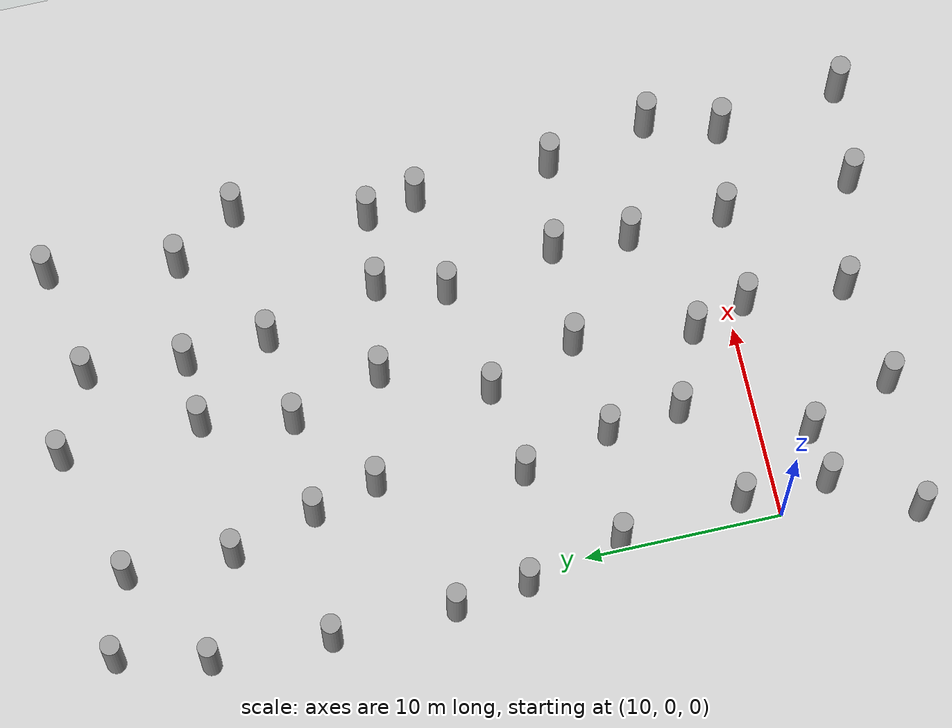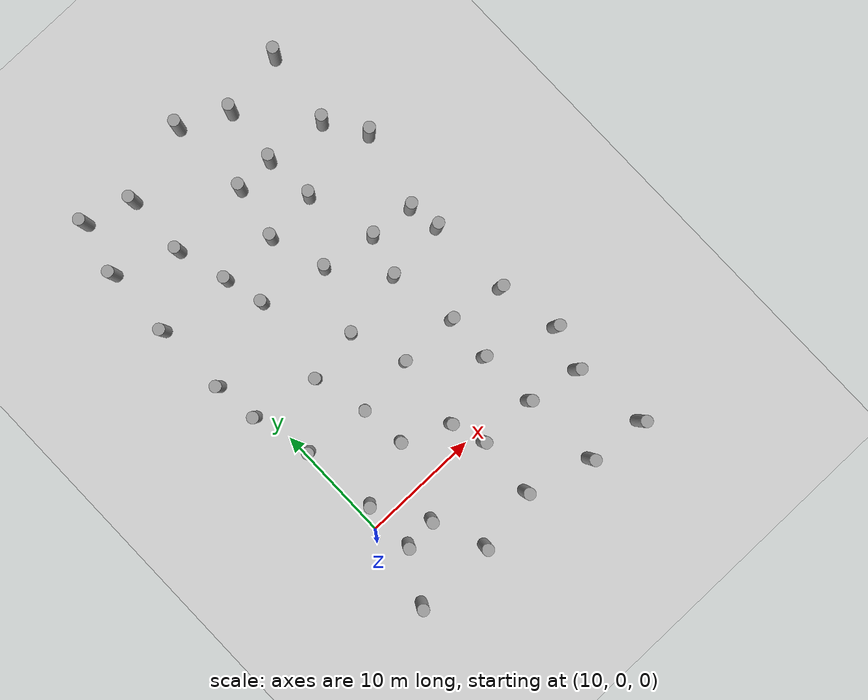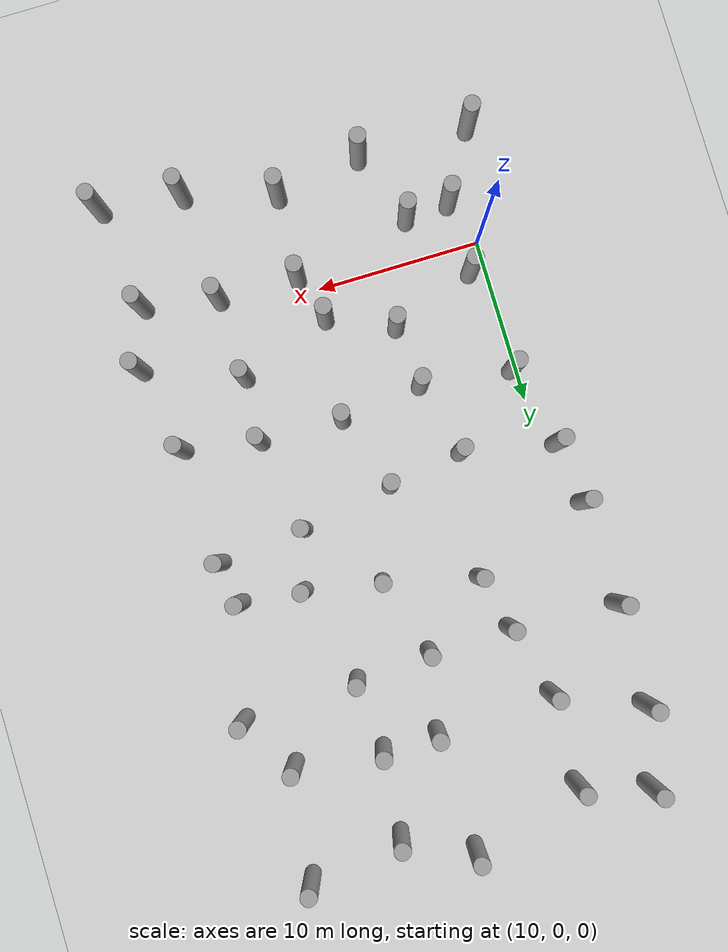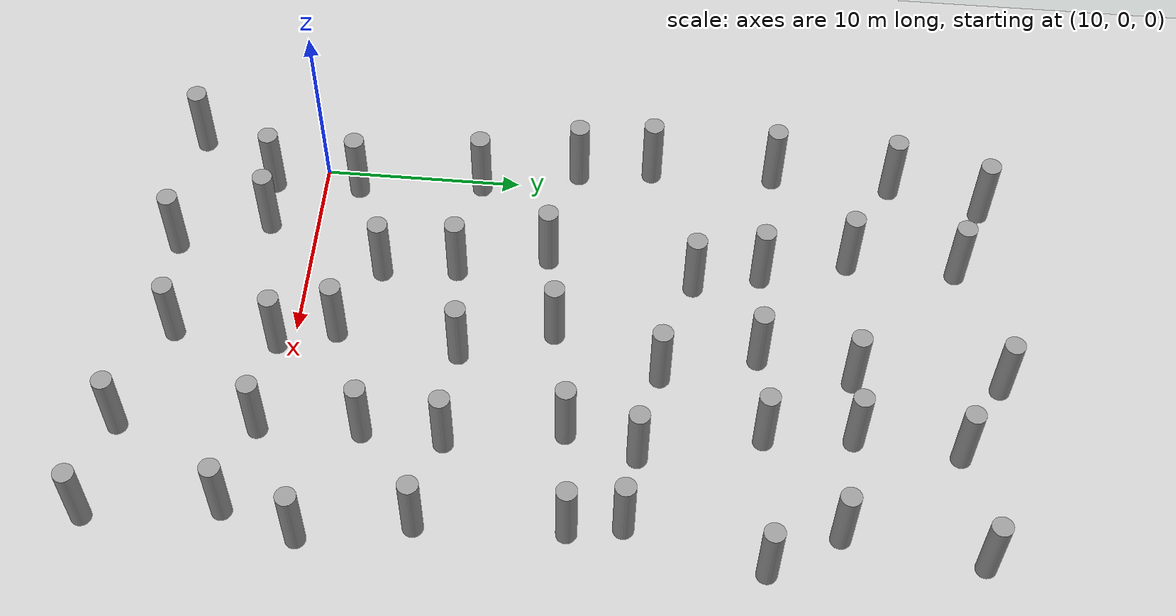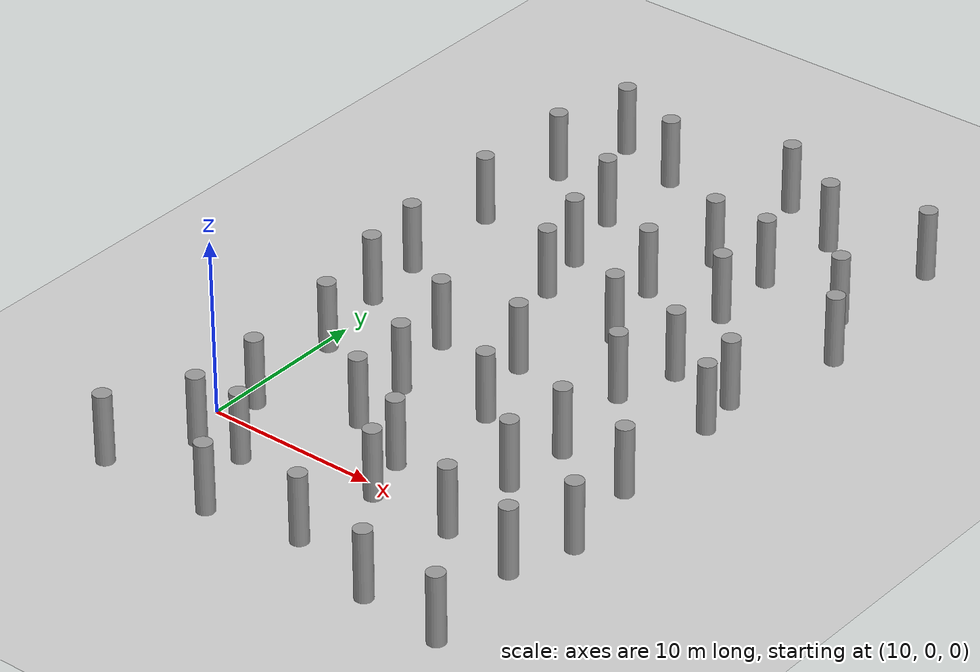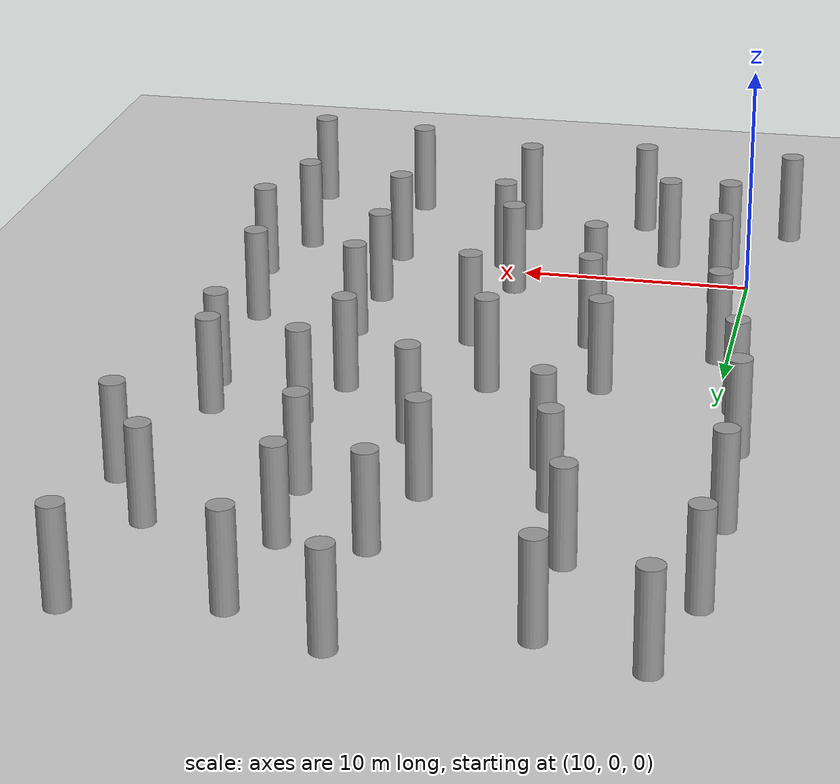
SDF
<sdf version="1.5">
 <world name="circle">
  <model name="ground">
   <static>1</static>
   <link name="link">
    <collision name="collision">
     <geometry><plane><normal>0 0 1</normal><size>100 100</size></plane></geometry>
     <surface><friction><ode><mu>100</mu><mu2>50</mu2></ode></friction></surface>
    </collision>
    <visual name="visual">
     <cast_shadows>0</cast_shadows>
     <geometry><plane><normal>0 0 1</normal><size>100 100</size></plane></geometry>
     <material>
      <script><uri>file://media/materials/scripts/gazebo.material</uri><name>Gazebo/Grey</name></script>
     </material>
    </visual>
    <velocity_decay><linear>0</linear><angular>0</angular></velocity_decay>
   </link>
  </model>
  <model name="unit_cylinder_6">
   <pose>8.65560884006 -6.71842204204 2 3e-06 4e-06 -0</pose>
   <static>1</static>
   <self_collide>1</self_collide>
   <link name="link">
    <inertial>
     <mass>1</mass>
     <inertia><ixx>0.145833</ixx><ixy>0</ixy><ixz>0</ixz><iyy>0.145833</iyy><iyz>0</iyz><izz>0.125</izz></inertia>
    </inertial>
    <collision name="collision">
     <geometry><cylinder><radius>0.5</radius><length>4</length></cylinder></geometry>
    </collision>
    <visual name="visual">
     <geometry><cylinder><radius>0.5</radius><length>4</length></cylinder></geometry>
     <material>
      <script><name>Gazebo/Grey</name><uri>file://media/materials/scripts/gazebo.material</uri></script>
     </material>
    </visual>
    <collision name="cyl_collision">
     <geometry><cylinder><radius>0.5</radius><length>4</length></cylinder></geometry>
    </collision>
    <sensor name="my_contact" type="contact">
     <contact><collision>cyl_collision</collision></contact>
     <update_rate>5</update_rate>
    </sensor>
   </link>
  </model>
  <model name="unit_cylinder_7">
   <pose>11.0925974259 -2.59262243464 2 3e-06 4e-06 -0</pose>
   <static>1</static>
   <self_collide>1</self_collide>
   <link name="link">
    <inertial>
     <mass>1</mass>
     <inertia><ixx>0.145833</ixx><ixy>0</ixy><ixz>0</ixz><iyy>0.145833</iyy><iyz>0</iyz><izz>0.125</izz></inertia>
    </inertial>
    <collision name="collision">
     <geometry><cylinder><radius>0.5</radius><length>4</length></cylinder></geometry>
    </collision>
    <visual name="visual">
     <geometry><cylinder><radius>0.5</radius><length>4</length></cylinder></geometry>
     <material>
      <script><name>Gazebo/Grey</name><uri>file://media/materials/scripts/gazebo.material</uri></script>
     </material>
    </visual>
    <collision name="cyl_collision">
     <geometry><cylinder><radius>0.5</radius><length>4</length></cylinder></geometry>
    </collision>
    <sensor name="my_contact" type="contact">
     <contact><collision>cyl_collision</collision></contact>
     <update_rate>5</update_rate>
    </sensor>
   </link>
  </model>
  <model name="unit_cylinder_8">
   <pose>11.0563673491 1.79596865884 2 3e-06 4e-06 -0</pose>
   <static>1</static>
   <self_collide>1</self_collide>
   <link name="link">
    <inertial>
     <mass>1</mass>
     <inertia><ixx>0.145833</ixx><ixy>0</ixy><ixz>0</ixz><iyy>0.145833</iyy><iyz>0</iyz><izz>0.125</izz></inertia>
    </inertial>
    <collision name="collision">
     <geometry><cylinder><radius>0.5</radius><length>4</length></cylinder></geometry>
    </collision>
    <visual name="visual">
     <geometry><cylinder><radius>0.5</radius><length>4</length></cylinder></geometry>
     <material>
      <script><name>Gazebo/Grey</name><uri>file://media/materials/scripts/gazebo.material</uri></script>
     </material>
    </visual>
    <collision name="cyl_collision">
     <geometry><cylinder><radius>0.5</radius><length>4</length></cylinder></geometry>
    </collision>
    <sensor name="my_contact" type="contact">
     <contact><collision>cyl_collision</collision></contact>
     <update_rate>5</update_rate>
    </sensor>
   </link>
  </model>
  <model name="unit_cylinder_9">
   <pose>10.4059899599 8.12202831886 2 3e-06 4e-06 -0</pose>
   <static>1</static>
   <self_collide>1</self_collide>
   <link name="link">
    <inertial>
     <mass>1</mass>
     <inertia><ixx>0.145833</ixx><ixy>0</ixy><ixz>0</ixz><iyy>0.145833</iyy><iyz>0</iyz><izz>0.125</izz></inertia>
    </inertial>
    <collision name="collision">
     <geometry><cylinder><radius>0.5</radius><length>4</length></cylinder></geometry>
    </collision>
    <visual name="visual">
     <geometry><cylinder><radius>0.5</radius><length>4</length></cylinder></geometry>
     <material>
      <script><name>Gazebo/Grey</name><uri>file://media/materials/scripts/gazebo.material</uri></script>
     </material>
    </visual>
    <collision name="cyl_collision">
     <geometry><cylinder><radius>0.5</radius><length>4</length></cylinder></geometry>
    </collision>
    <sensor name="my_contact" type="contact">
     <contact><collision>cyl_collision</collision></contact>
     <update_rate>5</update_rate>
    </sensor>
   </link>
  </model>
  <model name="unit_cylinder_10">
   <pose>9.20407594885 13.0749428126 2 3e-06 4e-06 -0</pose>
   <static>1</static>
   <self_collide>1</self_collide>
   <link name="link">
    <inertial>
     <mass>1</mass>
     <inertia><ixx>0.145833</ixx><ixy>0</ixy><ixz>0</ixz><iyy>0.145833</iyy><iyz>0</iyz><izz>0.125</izz></inertia>
    </inertial>
    <collision name="collision">
     <geometry><cylinder><radius>0.5</radius><length>4</length></cylinder></geometry>
    </collision>
    <visual name="visual">
     <geometry><cylinder><radius>0.5</radius><length>4</length></cylinder></geometry>
     <material>
      <script><name>Gazebo/Grey</name><uri>file://media/materials/scripts/gazebo.material</uri></script>
     </material>
    </visual>
    <collision name="cyl_collision">
     <geometry><cylinder><radius>0.5</radius><length>4</length></cylinder></geometry>
    </collision>
    <sensor name="my_contact" type="contact">
     <contact><collision>cyl_collision</collision></contact>
     <update_rate>5</update_rate>
    </sensor>
   </link>
  </model>
  <model name="unit_cylinder_11">
   <pose>8.75446936457 16.8259148366 2 3e-06 4e-06 -0</pose>
   <static>1</static>
   <self_collide>1</self_collide>
   <link name="link">
    <inertial>
     <mass>1</mass>
     <inertia><ixx>0.145833</ixx><ixy>0</ixy><ixz>0</ixz><iyy>0.145833</iyy><iyz>0</iyz><izz>0.125</izz></inertia>
    </inertial>
    <collision name="collision">
     <geometry><cylinder><radius>0.5</radius><length>4</length></cylinder></geometry>
    </collision>
    <visual name="visual">
     <geometry><cylinder><radius>0.5</radius><length>4</length></cylinder></geometry>
     <material>
      <script><name>Gazebo/Grey</name><uri>file://media/materials/scripts/gazebo.material</uri></script>
     </material>
    </visual>
    <collision name="cyl_collision">
     <geometry><cylinder><radius>0.5</radius><length>4</length></cylinder></geometry>
    </collision>
    <sensor name="my_contact" type="contact">
     <contact><collision>cyl_collision</collision></contact>
     <update_rate>5</update_rate>
    </sensor>
   </link>
  </model>
  <model name="unit_cylinder_12">
   <pose>8.59839209359 23.0891876215 2 3e-06 4e-06 -0</pose>
   <static>1</static>
   <self_collide>1</self_collide>
   <link name="link">
    <inertial>
     <mass>1</mass>
     <inertia><ixx>0.145833</ixx><ixy>0</ixy><ixz>0</ixz><iyy>0.145833</iyy><iyz>0</iyz><izz>0.125</izz></inertia>
    </inertial>
    <collision name="collision">
     <geometry><cylinder><radius>0.5</radius><length>4</length></cylinder></geometry>
    </collision>
    <visual name="visual">
     <geometry><cylinder><radius>0.5</radius><length>4</length></cylinder></geometry>
     <material>
      <script><name>Gazebo/Grey</name><uri>file://media/materials/scripts/gazebo.material</uri></script>
     </material>
    </visual>
    <collision name="cyl_collision">
     <geometry><cylinder><radius>0.5</radius><length>4</length></cylinder></geometry>
    </collision>
    <sensor name="my_contact" type="contact">
     <contact><collision>cyl_collision</collision></contact>
     <update_rate>5</update_rate>
    </sensor>
   </link>
  </model>
  <model name="unit_cylinder_13">
   <pose>8.77301460406 29.1386734522 2 3e-06 4e-06 -0</pose>
   <static>1</static>
   <self_collide>1</self_collide>
   <link name="link">
    <inertial>
     <mass>1</mass>
     <inertia><ixx>0.145833</ixx><ixy>0</ixy><ixz>0</ixz><iyy>0.145833</iyy><iyz>0</iyz><izz>0.125</izz></inertia>
    </inertial>
    <collision name="collision">
     <geometry><cylinder><radius>0.5</radius><length>4</length></cylinder></geometry>
    </collision>
    <visual name="visual">
     <geometry><cylinder><radius>0.5</radius><length>4</length></cylinder></geometry>
     <material>
      <script><name>Gazebo/Grey</name><uri>file://media/materials/scripts/gazebo.material</uri></script>
     </material>
    </visual>
    <collision name="cyl_collision">
     <geometry><cylinder><radius>0.5</radius><length>4</length></cylinder></geometry>
    </collision>
    <sensor name="my_contact" type="contact">
     <contact><collision>cyl_collision</collision></contact>
     <update_rate>5</update_rate>
    </sensor>
   </link>
  </model>
  <model name="unit_cylinder_14">
   <pose>9.91188079629 33.702368652 2 3e-06 4e-06 -0</pose>
   <static>1</static>
   <self_collide>1</self_collide>
   <link name="link">
    <inertial>
     <mass>1</mass>
     <inertia><ixx>0.145833</ixx><ixy>0</ixy><ixz>0</ixz><iyy>0.145833</iyy><iyz>0</iyz><izz>0.125</izz></inertia>
    </inertial>
    <collision name="collision">
     <geometry><cylinder><radius>0.5</radius><length>4</length></cylinder></geometry>
    </collision>
    <visual name="visual">
     <geometry><cylinder><radius>0.5</radius><length>4</length></cylinder></geometry>
     <material>
      <script><name>Gazebo/Grey</name><uri>file://media/materials/scripts/gazebo.material</uri></script>
     </material>
    </visual>
    <collision name="cyl_collision">
     <geometry><cylinder><radius>0.5</radius><length>4</length></cylinder></geometry>
    </collision>
    <sensor name="my_contact" type="contact">
     <contact><collision>cyl_collision</collision></contact>
     <update_rate>5</update_rate>
    </sensor>
   </link>
  </model>
  <model name="unit_cylinder_21">
   <pose>15.4473837249 -6.83084311532 2 3e-06 4e-06 -0</pose>
   <static>1</static>
   <self_collide>1</self_collide>
   <link name="link">
    <inertial>
     <mass>1</mass>
     <inertia><ixx>0.145833</ixx><ixy>0</ixy><ixz>0</ixz><iyy>0.145833</iyy><iyz>0</iyz><izz>0.125</izz></inertia>
    </inertial>
    <collision name="collision">
     <geometry><cylinder><radius>0.5</radius><length>4</length></cylinder></geometry>
    </collision>
    <visual name="visual">
     <geometry><cylinder><radius>0.5</radius><length>4</length></cylinder></geometry>
     <material>
      <script><name>Gazebo/Grey</name><uri>file://media/materials/scripts/gazebo.material</uri></script>
     </material>
    </visual>
    <collision name="cyl_collision">
     <geometry><cylinder><radius>0.5</radius><length>4</length></cylinder></geometry>
    </collision>
    <sensor name="my_contact" type="contact">
     <contact><collision>cyl_collision</collision></contact>
     <update_rate>5</update_rate>
    </sensor>
   </link>
  </model>
  <model name="unit_cylinder_22">
   <pose>13.7809937066 -2.39120445731 2 3e-06 4e-06 -0</pose>
   <static>1</static>
   <self_collide>1</self_collide>
   <link name="link">
    <inertial>
     <mass>1</mass>
     <inertia><ixx>0.145833</ixx><ixy>0</ixy><ixz>0</ixz><iyy>0.145833</iyy><iyz>0</iyz><izz>0.125</izz></inertia>
    </inertial>
    <collision name="collision">
     <geometry><cylinder><radius>0.5</radius><length>4</length></cylinder></geometry>
    </collision>
    <visual name="visual">
     <geometry><cylinder><radius>0.5</radius><length>4</length></cylinder></geometry>
     <material>
      <script><name>Gazebo/Grey</name><uri>file://media/materials/scripts/gazebo.material</uri></script>
     </material>
    </visual>
    <collision name="cyl_collision">
     <geometry><cylinder><radius>0.5</radius><length>4</length></cylinder></geometry>
    </collision>
    <sensor name="my_contact" type="contact">
     <contact><collision>cyl_collision</collision></contact>
     <update_rate>5</update_rate>
    </sensor>
   </link>
  </model>
  <model name="unit_cylinder_23">
   <pose>16.2458317515 3.72797373236 2 3e-06 4e-06 -0</pose>
   <static>1</static>
   <self_collide>1</self_collide>
   <link name="link">
    <inertial>
     <mass>1</mass>
     <inertia><ixx>0.145833</ixx><ixy>0</ixy><ixz>0</ixz><iyy>0.145833</iyy><iyz>0</iyz><izz>0.125</izz></inertia>
    </inertial>
    <collision name="collision">
     <geometry><cylinder><radius>0.5</radius><length>4</length></cylinder></geometry>
    </collision>
    <visual name="visual">
     <geometry><cylinder><radius>0.5</radius><length>4</length></cylinder></geometry>
     <material>
      <script><name>Gazebo/Grey</name><uri>file://media/materials/scripts/gazebo.material</uri></script>
     </material>
    </visual>
    <collision name="cyl_collision">
     <geometry><cylinder><radius>0.5</radius><length>4</length></cylinder></geometry>
    </collision>
    <sensor name="my_contact" type="contact">
     <contact><collision>cyl_collision</collision></contact>
     <update_rate>5</update_rate>
    </sensor>
   </link>
  </model>
  <model name="unit_cylinder_24">
   <pose>15.9001981405 7.47352681353 2 3e-06 4e-06 -0</pose>
   <static>1</static>
   <self_collide>1</self_collide>
   <link name="link">
    <inertial>
     <mass>1</mass>
     <inertia><ixx>0.145833</ixx><ixy>0</ixy><ixz>0</ixz><iyy>0.145833</iyy><iyz>0</iyz><izz>0.125</izz></inertia>
    </inertial>
    <collision name="collision">
     <geometry><cylinder><radius>0.5</radius><length>4</length></cylinder></geometry>
    </collision>
    <visual name="visual">
     <geometry><cylinder><radius>0.5</radius><length>4</length></cylinder></geometry>
     <material>
      <script><name>Gazebo/Grey</name><uri>file://media/materials/scripts/gazebo.material</uri></script>
     </material>
    </visual>
    <collision name="cyl_collision">
     <geometry><cylinder><radius>0.5</radius><length>4</length></cylinder></geometry>
    </collision>
    <sensor name="my_contact" type="contact">
     <contact><collision>cyl_collision</collision></contact>
     <update_rate>5</update_rate>
    </sensor>
   </link>
  </model>
  <model name="unit_cylinder_25">
   <pose>14.7860581348 11.9799662513 2 3e-06 4e-06 -0</pose>
   <static>1</static>
   <self_collide>1</self_collide>
   <link name="link">
    <inertial>
     <mass>1</mass>
     <inertia><ixx>0.145833</ixx><ixy>0</ixy><ixz>0</ixz><iyy>0.145833</iyy><iyz>0</iyz><izz>0.125</izz></inertia>
    </inertial>
    <collision name="collision">
     <geometry><cylinder><radius>0.5</radius><length>4</length></cylinder></geometry>
    </collision>
    <visual name="visual">
     <geometry><cylinder><radius>0.5</radius><length>4</length></cylinder></geometry>
     <material>
      <script><name>Gazebo/Grey</name><uri>file://media/materials/scripts/gazebo.material</uri></script>
     </material>
    </visual>
    <collision name="cyl_collision">
     <geometry><cylinder><radius>0.5</radius><length>4</length></cylinder></geometry>
    </collision>
    <sensor name="my_contact" type="contact">
     <contact><collision>cyl_collision</collision></contact>
     <update_rate>5</update_rate>
    </sensor>
   </link>
  </model>
  <model name="unit_cylinder_26">
   <pose>15.863351309 19.3138317568 2 3e-06 4e-06 -0</pose>
   <static>1</static>
   <self_collide>1</self_collide>
   <link name="link">
    <inertial>
     <mass>1</mass>
     <inertia><ixx>0.145833</ixx><ixy>0</ixy><ixz>0</ixz><iyy>0.145833</iyy><iyz>0</iyz><izz>0.125</izz></inertia>
    </inertial>
    <collision name="collision">
     <geometry><cylinder><radius>0.5</radius><length>4</length></cylinder></geometry>
    </collision>
    <visual name="visual">
     <geometry><cylinder><radius>0.5</radius><length>4</length></cylinder></geometry>
     <material>
      <script><name>Gazebo/Grey</name><uri>file://media/materials/scripts/gazebo.material</uri></script>
     </material>
    </visual>
    <collision name="cyl_collision">
     <geometry><cylinder><radius>0.5</radius><length>4</length></cylinder></geometry>
    </collision>
    <sensor name="my_contact" type="contact">
     <contact><collision>cyl_collision</collision></contact>
     <update_rate>5</update_rate>
    </sensor>
   </link>
  </model>
  <model name="unit_cylinder_27">
   <pose>15.0321887663 22.6323488595 2 3e-06 4e-06 -0</pose>
   <static>1</static>
   <self_collide>1</self_collide>
   <link name="link">
    <inertial>
     <mass>1</mass>
     <inertia><ixx>0.145833</ixx><ixy>0</ixy><ixz>0</ixz><iyy>0.145833</iyy><iyz>0</iyz><izz>0.125</izz></inertia>
    </inertial>
    <collision name="collision">
     <geometry><cylinder><radius>0.5</radius><length>4</length></cylinder></geometry>
    </collision>
    <visual name="visual">
     <geometry><cylinder><radius>0.5</radius><length>4</length></cylinder></geometry>
     <material>
      <script><name>Gazebo/Grey</name><uri>file://media/materials/scripts/gazebo.material</uri></script>
     </material>
    </visual>
    <collision name="cyl_collision">
     <geometry><cylinder><radius>0.5</radius><length>4</length></cylinder></geometry>
    </collision>
    <sensor name="my_contact" type="contact">
     <contact><collision>cyl_collision</collision></contact>
     <update_rate>5</update_rate>
    </sensor>
   </link>
  </model>
  <model name="unit_cylinder_28">
   <pose>13.8386892422 26.9644168073 2 3e-06 4e-06 -0</pose>
   <static>1</static>
   <self_collide>1</self_collide>
   <link name="link">
    <inertial>
     <mass>1</mass>
     <inertia><ixx>0.145833</ixx><ixy>0</ixy><ixz>0</ixz><iyy>0.145833</iyy><iyz>0</iyz><izz>0.125</izz></inertia>
    </inertial>
    <collision name="collision">
     <geometry><cylinder><radius>0.5</radius><length>4</length></cylinder></geometry>
    </collision>
    <visual name="visual">
     <geometry><cylinder><radius>0.5</radius><length>4</length></cylinder></geometry>
     <material>
      <script><name>Gazebo/Grey</name><uri>file://media/materials/scripts/gazebo.material</uri></script>
     </material>
    </visual>
    <collision name="cyl_collision">
     <geometry><cylinder><radius>0.5</radius><length>4</length></cylinder></geometry>
    </collision>
    <sensor name="my_contact" type="contact">
     <contact><collision>cyl_collision</collision></contact>
     <update_rate>5</update_rate>
    </sensor>
   </link>
  </model>
  <model name="unit_cylinder_29">
   <pose>13.9463333479 32.3646051353 2 3e-06 4e-06 -0</pose>
   <static>1</static>
   <self_collide>1</self_collide>
   <link name="link">
    <inertial>
     <mass>1</mass>
     <inertia><ixx>0.145833</ixx><ixy>0</ixy><ixz>0</ixz><iyy>0.145833</iyy><iyz>0</iyz><izz>0.125</izz></inertia>
    </inertial>
    <collision name="collision">
     <geometry><cylinder><radius>0.5</radius><length>4</length></cylinder></geometry>
    </collision>
    <visual name="visual">
     <geometry><cylinder><radius>0.5</radius><length>4</length></cylinder></geometry>
     <material>
      <script><name>Gazebo/Grey</name><uri>file://media/materials/scripts/gazebo.material</uri></script>
     </material>
    </visual>
    <collision name="cyl_collision">
     <geometry><cylinder><radius>0.5</radius><length>4</length></cylinder></geometry>
    </collision>
    <sensor name="my_contact" type="contact">
     <contact><collision>cyl_collision</collision></contact>
     <update_rate>5</update_rate>
    </sensor>
   </link>
  </model>
  <model name="unit_cylinder_36">
   <pose>20.7448508858 -5.93720853215 2 3e-06 4e-06 -0</pose>
   <static>1</static>
   <self_collide>1</self_collide>
   <link name="link">
    <inertial>
     <mass>1</mass>
     <inertia><ixx>0.145833</ixx><ixy>0</ixy><ixz>0</ixz><iyy>0.145833</iyy><iyz>0</iyz><izz>0.125</izz></inertia>
    </inertial>
    <collision name="collision">
     <geometry><cylinder><radius>0.5</radius><length>4</length></cylinder></geometry>
    </collision>
    <visual name="visual">
     <geometry><cylinder><radius>0.5</radius><length>4</length></cylinder></geometry>
     <material>
      <script><name>Gazebo/Grey</name><uri>file://media/materials/scripts/gazebo.material</uri></script>
     </material>
    </visual>
    <collision name="cyl_collision">
     <geometry><cylinder><radius>0.5</radius><length>4</length></cylinder></geometry>
    </collision>
    <sensor name="my_contact" type="contact">
     <contact><collision>cyl_collision</collision></contact>
     <update_rate>5</update_rate>
    </sensor>
   </link>
  </model>
  <model name="unit_cylinder_37">
   <pose>21.0385434207 -0.788469635204 2 3e-06 4e-06 -0</pose>
   <static>1</static>
   <self_collide>1</self_collide>
   <link name="link">
    <inertial>
     <mass>1</mass>
     <inertia><ixx>0.145833</ixx><ixy>0</ixy><ixz>0</ixz><iyy>0.145833</iyy><iyz>0</iyz><izz>0.125</izz></inertia>
    </inertial>
    <collision name="collision">
     <geometry><cylinder><radius>0.5</radius><length>4</length></cylinder></geometry>
    </collision>
    <visual name="visual">
     <geometry><cylinder><radius>0.5</radius><length>4</length></cylinder></geometry>
     <material>
      <script><name>Gazebo/Grey</name><uri>file://media/materials/scripts/gazebo.material</uri></script>
     </material>
    </visual>
    <collision name="cyl_collision">
     <geometry><cylinder><radius>0.5</radius><length>4</length></cylinder></geometry>
    </collision>
    <sensor name="my_contact" type="contact">
     <contact><collision>cyl_collision</collision></contact>
     <update_rate>5</update_rate>
    </sensor>
   </link>
  </model>
  <model name="unit_cylinder_38">
   <pose>20.1316745931 2.02383003871 2 3e-06 4e-06 -0</pose>
   <static>1</static>
   <self_collide>1</self_collide>
   <link name="link">
    <inertial>
     <mass>1</mass>
     <inertia><ixx>0.145833</ixx><ixy>0</ixy><ixz>0</ixz><iyy>0.145833</iyy><iyz>0</iyz><izz>0.125</izz></inertia>
    </inertial>
    <collision name="collision">
     <geometry><cylinder><radius>0.5</radius><length>4</length></cylinder></geometry>
    </collision>
    <visual name="visual">
     <geometry><cylinder><radius>0.5</radius><length>4</length></cylinder></geometry>
     <material>
      <script><name>Gazebo/Grey</name><uri>file://media/materials/scripts/gazebo.material</uri></script>
     </material>
    </visual>
    <collision name="cyl_collision">
     <geometry><cylinder><radius>0.5</radius><length>4</length></cylinder></geometry>
    </collision>
    <sensor name="my_contact" type="contact">
     <contact><collision>cyl_collision</collision></contact>
     <update_rate>5</update_rate>
    </sensor>
   </link>
  </model>
  <model name="unit_cylinder_39">
   <pose>20.8875474315 8.10638016418 2 3e-06 4e-06 -0</pose>
   <static>1</static>
   <self_collide>1</self_collide>
   <link name="link">
    <inertial>
     <mass>1</mass>
     <inertia><ixx>0.145833</ixx><ixy>0</ixy><ixz>0</ixz><iyy>0.145833</iyy><iyz>0</iyz><izz>0.125</izz></inertia>
    </inertial>
    <collision name="collision">
     <geometry><cylinder><radius>0.5</radius><length>4</length></cylinder></geometry>
    </collision>
    <visual name="visual">
     <geometry><cylinder><radius>0.5</radius><length>4</length></cylinder></geometry>
     <material>
      <script><name>Gazebo/Grey</name><uri>file://media/materials/scripts/gazebo.material</uri></script>
     </material>
    </visual>
    <collision name="cyl_collision">
     <geometry><cylinder><radius>0.5</radius><length>4</length></cylinder></geometry>
    </collision>
    <sensor name="my_contact" type="contact">
     <contact><collision>cyl_collision</collision></contact>
     <update_rate>5</update_rate>
    </sensor>
   </link>
  </model>
  <model name="unit_cylinder_40">
   <pose>19.3097542014 12.6751259291 2 3e-06 4e-06 -0</pose>
   <static>1</static>
   <self_collide>1</self_collide>
   <link name="link">
    <inertial>
     <mass>1</mass>
     <inertia><ixx>0.145833</ixx><ixy>0</ixy><ixz>0</ixz><iyy>0.145833</iyy><iyz>0</iyz><izz>0.125</izz></inertia>
    </inertial>
    <collision name="collision">
     <geometry><cylinder><radius>0.5</radius><length>4</length></cylinder></geometry>
    </collision>
    <visual name="visual">
     <geometry><cylinder><radius>0.5</radius><length>4</length></cylinder></geometry>
     <material>
      <script><name>Gazebo/Grey</name><uri>file://media/materials/scripts/gazebo.material</uri></script>
     </material>
    </visual>
    <collision name="cyl_collision">
     <geometry><cylinder><radius>0.5</radius><length>4</length></cylinder></geometry>
    </collision>
    <sensor name="my_contact" type="contact">
     <contact><collision>cyl_collision</collision></contact>
     <update_rate>5</update_rate>
    </sensor>
   </link>
  </model>
  <model name="unit_cylinder_41">
   <pose>21.37523828 17.9522517862 2 3e-06 4e-06 -0</pose>
   <static>1</static>
   <self_collide>1</self_collide>
   <link name="link">
    <inertial>
     <mass>1</mass>
     <inertia><ixx>0.145833</ixx><ixy>0</ixy><ixz>0</ixz><iyy>0.145833</iyy><iyz>0</iyz><izz>0.125</izz></inertia>
    </inertial>
    <collision name="collision">
     <geometry><cylinder><radius>0.5</radius><length>4</length></cylinder></geometry>
    </collision>
    <visual name="visual">
     <geometry><cylinder><radius>0.5</radius><length>4</length></cylinder></geometry>
     <material>
      <script><name>Gazebo/Grey</name><uri>file://media/materials/scripts/gazebo.material</uri></script>
     </material>
    </visual>
    <collision name="cyl_collision">
     <geometry><cylinder><radius>0.5</radius><length>4</length></cylinder></geometry>
    </collision>
    <sensor name="my_contact" type="contact">
     <contact><collision>cyl_collision</collision></contact>
     <update_rate>5</update_rate>
    </sensor>
   </link>
  </model>
  <model name="unit_cylinder_42">
   <pose>19.9421912974 22.6266981408 2 3e-06 4e-06 -0</pose>
   <static>1</static>
   <self_collide>1</self_collide>
   <link name="link">
    <inertial>
     <mass>1</mass>
     <inertia><ixx>0.145833</ixx><ixy>0</ixy><ixz>0</ixz><iyy>0.145833</iyy><iyz>0</iyz><izz>0.125</izz></inertia>
    </inertial>
    <collision name="collision">
     <geometry><cylinder><radius>0.5</radius><length>4</length></cylinder></geometry>
    </collision>
    <visual name="visual">
     <geometry><cylinder><radius>0.5</radius><length>4</length></cylinder></geometry>
     <material>
      <script><name>Gazebo/Grey</name><uri>file://media/materials/scripts/gazebo.material</uri></script>
     </material>
    </visual>
    <collision name="cyl_collision">
     <geometry><cylinder><radius>0.5</radius><length>4</length></cylinder></geometry>
    </collision>
    <sensor name="my_contact" type="contact">
     <contact><collision>cyl_collision</collision></contact>
     <update_rate>5</update_rate>
    </sensor>
   </link>
  </model>
  <model name="unit_cylinder_43">
   <pose>20.8429871309 27.210454042 2 3e-06 4e-06 -0</pose>
   <static>1</static>
   <self_collide>1</self_collide>
   <link name="link">
    <inertial>
     <mass>1</mass>
     <inertia><ixx>0.145833</ixx><ixy>0</ixy><ixz>0</ixz><iyy>0.145833</iyy><iyz>0</iyz><izz>0.125</izz></inertia>
    </inertial>
    <collision name="collision">
     <geometry><cylinder><radius>0.5</radius><length>4</length></cylinder></geometry>
    </collision>
    <visual name="visual">
     <geometry><cylinder><radius>0.5</radius><length>4</length></cylinder></geometry>
     <material>
      <script><name>Gazebo/Grey</name><uri>file://media/materials/scripts/gazebo.material</uri></script>
     </material>
    </visual>
    <collision name="cyl_collision">
     <geometry><cylinder><radius>0.5</radius><length>4</length></cylinder></geometry>
    </collision>
    <sensor name="my_contact" type="contact">
     <contact><collision>cyl_collision</collision></contact>
     <update_rate>5</update_rate>
    </sensor>
   </link>
  </model>
  <model name="unit_cylinder_44">
   <pose>20.6291243082 34.2940424882 2 3e-06 4e-06 -0</pose>
   <static>1</static>
   <self_collide>1</self_collide>
   <link name="link">
    <inertial>
     <mass>1</mass>
     <inertia><ixx>0.145833</ixx><ixy>0</ixy><ixz>0</ixz><iyy>0.145833</iyy><iyz>0</iyz><izz>0.125</izz></inertia>
    </inertial>
    <collision name="collision">
     <geometry><cylinder><radius>0.5</radius><length>4</length></cylinder></geometry>
    </collision>
    <visual name="visual">
     <geometry><cylinder><radius>0.5</radius><length>4</length></cylinder></geometry>
     <material>
      <script><name>Gazebo/Grey</name><uri>file://media/materials/scripts/gazebo.material</uri></script>
     </material>
    </visual>
    <collision name="cyl_collision">
     <geometry><cylinder><radius>0.5</radius><length>4</length></cylinder></geometry>
    </collision>
    <sensor name="my_contact" type="contact">
     <contact><collision>cyl_collision</collision></contact>
     <update_rate>5</update_rate>
    </sensor>
   </link>
  </model>
  <model name="unit_cylinder_51">
   <pose>26.2463321133 -7.57701077538 2 3e-06 4e-06 -0</pose>
   <static>1</static>
   <self_collide>1</self_collide>
   <link name="link">
    <inertial>
     <mass>1</mass>
     <inertia><ixx>0.145833</ixx><ixy>0</ixy><ixz>0</ixz><iyy>0.145833</iyy><iyz>0</iyz><izz>0.125</izz></inertia>
    </inertial>
    <collision name="collision">
     <geometry><cylinder><radius>0.5</radius><length>4</length></cylinder></geometry>
    </collision>
    <visual name="visual">
     <geometry><cylinder><radius>0.5</radius><length>4</length></cylinder></geometry>
     <material>
      <script><name>Gazebo/Grey</name><uri>file://media/materials/scripts/gazebo.material</uri></script>
     </material>
    </visual>
    <collision name="cyl_collision">
     <geometry><cylinder><radius>0.5</radius><length>4</length></cylinder></geometry>
    </collision>
    <sensor name="my_contact" type="contact">
     <contact><collision>cyl_collision</collision></contact>
     <update_rate>5</update_rate>
    </sensor>
   </link>
  </model>
  <model name="unit_cylinder_52">
   <pose>25.8863657276 -0.904166370469 2 3e-06 4e-06 -0</pose>
   <static>1</static>
   <self_collide>1</self_collide>
   <link name="link">
    <inertial>
     <mass>1</mass>
     <inertia><ixx>0.145833</ixx><ixy>0</ixy><ixz>0</ixz><iyy>0.145833</iyy><iyz>0</iyz><izz>0.125</izz></inertia>
    </inertial>
    <collision name="collision">
     <geometry><cylinder><radius>0.5</radius><length>4</length></cylinder></geometry>
    </collision>
    <visual name="visual">
     <geometry><cylinder><radius>0.5</radius><length>4</length></cylinder></geometry>
     <material>
      <script><name>Gazebo/Grey</name><uri>file://media/materials/scripts/gazebo.material</uri></script>
     </material>
    </visual>
    <collision name="cyl_collision">
     <geometry><cylinder><radius>0.5</radius><length>4</length></cylinder></geometry>
    </collision>
    <sensor name="my_contact" type="contact">
     <contact><collision>cyl_collision</collision></contact>
     <update_rate>5</update_rate>
    </sensor>
   </link>
  </model>
  <model name="unit_cylinder_53">
   <pose>25.6950825656 4.06011925962 2 3e-06 4e-06 -0</pose>
   <static>1</static>
   <self_collide>1</self_collide>
   <link name="link">
    <inertial>
     <mass>1</mass>
     <inertia><ixx>0.145833</ixx><ixy>0</ixy><ixz>0</ixz><iyy>0.145833</iyy><iyz>0</iyz><izz>0.125</izz></inertia>
    </inertial>
    <collision name="collision">
     <geometry><cylinder><radius>0.5</radius><length>4</length></cylinder></geometry>
    </collision>
    <visual name="visual">
     <geometry><cylinder><radius>0.5</radius><length>4</length></cylinder></geometry>
     <material>
      <script><name>Gazebo/Grey</name><uri>file://media/materials/scripts/gazebo.material</uri></script>
     </material>
    </visual>
    <collision name="cyl_collision">
     <geometry><cylinder><radius>0.5</radius><length>4</length></cylinder></geometry>
    </collision>
    <sensor name="my_contact" type="contact">
     <contact><collision>cyl_collision</collision></contact>
     <update_rate>5</update_rate>
    </sensor>
   </link>
  </model>
  <model name="unit_cylinder_54">
   <pose>25.8964534984 7.98098816818 2 3e-06 4e-06 -0</pose>
   <static>1</static>
   <self_collide>1</self_collide>
   <link name="link">
    <inertial>
     <mass>1</mass>
     <inertia><ixx>0.145833</ixx><ixy>0</ixy><ixz>0</ixz><iyy>0.145833</iyy><iyz>0</iyz><izz>0.125</izz></inertia>
    </inertial>
    <collision name="collision">
     <geometry><cylinder><radius>0.5</radius><length>4</length></cylinder></geometry>
    </collision>
    <visual name="visual">
     <geometry><cylinder><radius>0.5</radius><length>4</length></cylinder></geometry>
     <material>
      <script><name>Gazebo/Grey</name><uri>file://media/materials/scripts/gazebo.material</uri></script>
     </material>
    </visual>
    <collision name="cyl_collision">
     <geometry><cylinder><radius>0.5</radius><length>4</length></cylinder></geometry>
    </collision>
    <sensor name="my_contact" type="contact">
     <contact><collision>cyl_collision</collision></contact>
     <update_rate>5</update_rate>
    </sensor>
   </link>
  </model>
  <model name="unit_cylinder_55">
   <pose>24.9285981014 13.6842901332 2 3e-06 4e-06 -0</pose>
   <static>1</static>
   <self_collide>1</self_collide>
   <link name="link">
    <inertial>
     <mass>1</mass>
     <inertia><ixx>0.145833</ixx><ixy>0</ixy><ixz>0</ixz><iyy>0.145833</iyy><iyz>0</iyz><izz>0.125</izz></inertia>
    </inertial>
    <collision name="collision">
     <geometry><cylinder><radius>0.5</radius><length>4</length></cylinder></geometry>
    </collision>
    <visual name="visual">
     <geometry><cylinder><radius>0.5</radius><length>4</length></cylinder></geometry>
     <material>
      <script><name>Gazebo/Grey</name><uri>file://media/materials/scripts/gazebo.material</uri></script>
     </material>
    </visual>
    <collision name="cyl_collision">
     <geometry><cylinder><radius>0.5</radius><length>4</length></cylinder></geometry>
    </collision>
    <sensor name="my_contact" type="contact">
     <contact><collision>cyl_collision</collision></contact>
     <update_rate>5</update_rate>
    </sensor>
   </link>
  </model>
  <model name="unit_cylinder_56">
   <pose>25.9326293728 17.1416501381 2 3e-06 4e-06 -0</pose>
   <static>1</static>
   <self_collide>1</self_collide>
   <link name="link">
    <inertial>
     <mass>1</mass>
     <inertia><ixx>0.145833</ixx><ixy>0</ixy><ixz>0</ixz><iyy>0.145833</iyy><iyz>0</iyz><izz>0.125</izz></inertia>
    </inertial>
    <collision name="collision">
     <geometry><cylinder><radius>0.5</radius><length>4</length></cylinder></geometry>
    </collision>
    <visual name="visual">
     <geometry><cylinder><radius>0.5</radius><length>4</length></cylinder></geometry>
     <material>
      <script><name>Gazebo/Grey</name><uri>file://media/materials/scripts/gazebo.material</uri></script>
     </material>
    </visual>
    <collision name="cyl_collision">
     <geometry><cylinder><radius>0.5</radius><length>4</length></cylinder></geometry>
    </collision>
    <sensor name="my_contact" type="contact">
     <contact><collision>cyl_collision</collision></contact>
     <update_rate>5</update_rate>
    </sensor>
   </link>
  </model>
  <model name="unit_cylinder_57">
   <pose>24.4465514904 23.0130084233 2 3e-06 4e-06 -0</pose>
   <static>1</static>
   <self_collide>1</self_collide>
   <link name="link">
    <inertial>
     <mass>1</mass>
     <inertia><ixx>0.145833</ixx><ixy>0</ixy><ixz>0</ixz><iyy>0.145833</iyy><iyz>0</iyz><izz>0.125</izz></inertia>
    </inertial>
    <collision name="collision">
     <geometry><cylinder><radius>0.5</radius><length>4</length></cylinder></geometry>
    </collision>
    <visual name="visual">
     <geometry><cylinder><radius>0.5</radius><length>4</length></cylinder></geometry>
     <material>
      <script><name>Gazebo/Grey</name><uri>file://media/materials/scripts/gazebo.material</uri></script>
     </material>
    </visual>
    <collision name="cyl_collision">
     <geometry><cylinder><radius>0.5</radius><length>4</length></cylinder></geometry>
    </collision>
    <sensor name="my_contact" type="contact">
     <contact><collision>cyl_collision</collision></contact>
     <update_rate>5</update_rate>
    </sensor>
   </link>
  </model>
  <model name="unit_cylinder_58">
   <pose>24.1296929533 27.2715723586 2 3e-06 4e-06 -0</pose>
   <static>1</static>
   <self_collide>1</self_collide>
   <link name="link">
    <inertial>
     <mass>1</mass>
     <inertia><ixx>0.145833</ixx><ixy>0</ixy><ixz>0</ixz><iyy>0.145833</iyy><iyz>0</iyz><izz>0.125</izz></inertia>
    </inertial>
    <collision name="collision">
     <geometry><cylinder><radius>0.5</radius><length>4</length></cylinder></geometry>
    </collision>
    <visual name="visual">
     <geometry><cylinder><radius>0.5</radius><length>4</length></cylinder></geometry>
     <material>
      <script><name>Gazebo/Grey</name><uri>file://media/materials/scripts/gazebo.material</uri></script>
     </material>
    </visual>
    <collision name="cyl_collision">
     <geometry><cylinder><radius>0.5</radius><length>4</length></cylinder></geometry>
    </collision>
    <sensor name="my_contact" type="contact">
     <contact><collision>cyl_collision</collision></contact>
     <update_rate>5</update_rate>
    </sensor>
   </link>
  </model>
  <model name="unit_cylinder_59">
   <pose>24.5818955696 32.3008854623 2 3e-06 4e-06 -0</pose>
   <static>1</static>
   <self_collide>1</self_collide>
   <link name="link">
    <inertial>
     <mass>1</mass>
     <inertia><ixx>0.145833</ixx><ixy>0</ixy><ixz>0</ixz><iyy>0.145833</iyy><iyz>0</iyz><izz>0.125</izz></inertia>
    </inertial>
    <collision name="collision">
     <geometry><cylinder><radius>0.5</radius><length>4</length></cylinder></geometry>
    </collision>
    <visual name="visual">
     <geometry><cylinder><radius>0.5</radius><length>4</length></cylinder></geometry>
     <material>
      <script><name>Gazebo/Grey</name><uri>file://media/materials/scripts/gazebo.material</uri></script>
     </material>
    </visual>
    <collision name="cyl_collision">
     <geometry><cylinder><radius>0.5</radius><length>4</length></cylinder></geometry>
    </collision>
    <sensor name="my_contact" type="contact">
     <contact><collision>cyl_collision</collision></contact>
     <update_rate>5</update_rate>
    </sensor>
   </link>
  </model>
  <model name="unit_cylinder_66">
   <pose>31.2009264816 -8.13955867809 2 3e-06 4e-06 -0</pose>
   <static>1</static>
   <self_collide>1</self_collide>
   <link name="link">
    <inertial>
     <mass>1</mass>
     <inertia><ixx>0.145833</ixx><ixy>0</ixy><ixz>0</ixz><iyy>0.145833</iyy><iyz>0</iyz><izz>0.125</izz></inertia>
    </inertial>
    <collision name="collision">
     <geometry><cylinder><radius>0.5</radius><length>4</length></cylinder></geometry>
    </collision>
    <visual name="visual">
     <geometry><cylinder><radius>0.5</radius><length>4</length></cylinder></geometry>
     <material>
      <script><name>Gazebo/Grey</name><uri>file://media/materials/scripts/gazebo.material</uri></script>
     </material>
    </visual>
    <collision name="cyl_collision">
     <geometry><cylinder><radius>0.5</radius><length>4</length></cylinder></geometry>
    </collision>
    <sensor name="my_contact" type="contact">
     <contact><collision>cyl_collision</collision></contact>
     <update_rate>5</update_rate>
    </sensor>
   </link>
  </model>
  <model name="unit_cylinder_67">
   <pose>30.354939798 -1.74596462565 2 3e-06 4e-06 -0</pose>
   <static>1</static>
   <self_collide>1</self_collide>
   <link name="link">
    <inertial>
     <mass>1</mass>
     <inertia><ixx>0.145833</ixx><ixy>0</ixy><ixz>0</ixz><iyy>0.145833</iyy><iyz>0</iyz><izz>0.125</izz></inertia>
    </inertial>
    <collision name="collision">
     <geometry><cylinder><radius>0.5</radius><length>4</length></cylinder></geometry>
    </collision>
    <visual name="visual">
     <geometry><cylinder><radius>0.5</radius><length>4</length></cylinder></geometry>
     <material>
      <script><name>Gazebo/Grey</name><uri>file://media/materials/scripts/gazebo.material</uri></script>
     </material>
    </visual>
    <collision name="cyl_collision">
     <geometry><cylinder><radius>0.5</radius><length>4</length></cylinder></geometry>
    </collision>
    <sensor name="my_contact" type="contact">
     <contact><collision>cyl_collision</collision></contact>
     <update_rate>5</update_rate>
    </sensor>
   </link>
  </model>
  <model name="unit_cylinder_68">
   <pose>31.4982842542 1.87418249852 2 3e-06 4e-06 -0</pose>
   <static>1</static>
   <self_collide>1</self_collide>
   <link name="link">
    <inertial>
     <mass>1</mass>
     <inertia><ixx>0.145833</ixx><ixy>0</ixy><ixz>0</ixz><iyy>0.145833</iyy><iyz>0</iyz><izz>0.125</izz></inertia>
    </inertial>
    <collision name="collision">
     <geometry><cylinder><radius>0.5</radius><length>4</length></cylinder></geometry>
    </collision>
    <visual name="visual">
     <geometry><cylinder><radius>0.5</radius><length>4</length></cylinder></geometry>
     <material>
      <script><name>Gazebo/Grey</name><uri>file://media/materials/scripts/gazebo.material</uri></script>
     </material>
    </visual>
    <collision name="cyl_collision">
     <geometry><cylinder><radius>0.5</radius><length>4</length></cylinder></geometry>
    </collision>
    <sensor name="my_contact" type="contact">
     <contact><collision>cyl_collision</collision></contact>
     <update_rate>5</update_rate>
    </sensor>
   </link>
  </model>
  <model name="unit_cylinder_69">
   <pose>30.4466450166 7.14203113624 2 3e-06 4e-06 -0</pose>
   <static>1</static>
   <self_collide>1</self_collide>
   <link name="link">
    <inertial>
     <mass>1</mass>
     <inertia><ixx>0.145833</ixx><ixy>0</ixy><ixz>0</ixz><iyy>0.145833</iyy><iyz>0</iyz><izz>0.125</izz></inertia>
    </inertial>
    <collision name="collision">
     <geometry><cylinder><radius>0.5</radius><length>4</length></cylinder></geometry>
    </collision>
    <visual name="visual">
     <geometry><cylinder><radius>0.5</radius><length>4</length></cylinder></geometry>
     <material>
      <script><name>Gazebo/Grey</name><uri>file://media/materials/scripts/gazebo.material</uri></script>
     </material>
    </visual>
    <collision name="cyl_collision">
     <geometry><cylinder><radius>0.5</radius><length>4</length></cylinder></geometry>
    </collision>
    <sensor name="my_contact" type="contact">
     <contact><collision>cyl_collision</collision></contact>
     <update_rate>5</update_rate>
    </sensor>
   </link>
  </model>
  <model name="unit_cylinder_70">
   <pose>30.1504613578 14.1688686832 2 3e-06 4e-06 -0</pose>
   <static>1</static>
   <self_collide>1</self_collide>
   <link name="link">
    <inertial>
     <mass>1</mass>
     <inertia><ixx>0.145833</ixx><ixy>0</ixy><ixz>0</ixz><iyy>0.145833</iyy><iyz>0</iyz><izz>0.125</izz></inertia>
    </inertial>
    <collision name="collision">
     <geometry><cylinder><radius>0.5</radius><length>4</length></cylinder></geometry>
    </collision>
    <visual name="visual">
     <geometry><cylinder><radius>0.5</radius><length>4</length></cylinder></geometry>
     <material>
      <script><name>Gazebo/Grey</name><uri>file://media/materials/scripts/gazebo.material</uri></script>
     </material>
    </visual>
    <collision name="cyl_collision">
     <geometry><cylinder><radius>0.5</radius><length>4</length></cylinder></geometry>
    </collision>
    <sensor name="my_contact" type="contact">
     <contact><collision>cyl_collision</collision></contact>
     <update_rate>5</update_rate>
    </sensor>
   </link>
  </model>
  <model name="unit_cylinder_71">
   <pose>29.6977156585 16.7531547998 2 3e-06 4e-06 -0</pose>
   <static>1</static>
   <self_collide>1</self_collide>
   <link name="link">
    <inertial>
     <mass>1</mass>
     <inertia><ixx>0.145833</ixx><ixy>0</ixy><ixz>0</ixz><iyy>0.145833</iyy><iyz>0</iyz><izz>0.125</izz></inertia>
    </inertial>
    <collision name="collision">
     <geometry><cylinder><radius>0.5</radius><length>4</length></cylinder></geometry>
    </collision>
    <visual name="visual">
     <geometry><cylinder><radius>0.5</radius><length>4</length></cylinder></geometry>
     <material>
      <script><name>Gazebo/Grey</name><uri>file://media/materials/scripts/gazebo.material</uri></script>
     </material>
    </visual>
    <collision name="cyl_collision">
     <geometry><cylinder><radius>0.5</radius><length>4</length></cylinder></geometry>
    </collision>
    <sensor name="my_contact" type="contact">
     <contact><collision>cyl_collision</collision></contact>
     <update_rate>5</update_rate>
    </sensor>
   </link>
  </model>
  <model name="unit_cylinder_72">
   <pose>31.3926819509 23.3469766135 2 3e-06 4e-06 -0</pose>
   <static>1</static>
   <self_collide>1</self_collide>
   <link name="link">
    <inertial>
     <mass>1</mass>
     <inertia><ixx>0.145833</ixx><ixy>0</ixy><ixz>0</ixz><iyy>0.145833</iyy><iyz>0</iyz><izz>0.125</izz></inertia>
    </inertial>
    <collision name="collision">
     <geometry><cylinder><radius>0.5</radius><length>4</length></cylinder></geometry>
    </collision>
    <visual name="visual">
     <geometry><cylinder><radius>0.5</radius><length>4</length></cylinder></geometry>
     <material>
      <script><name>Gazebo/Grey</name><uri>file://media/materials/scripts/gazebo.material</uri></script>
     </material>
    </visual>
    <collision name="cyl_collision">
     <geometry><cylinder><radius>0.5</radius><length>4</length></cylinder></geometry>
    </collision>
    <sensor name="my_contact" type="contact">
     <contact><collision>cyl_collision</collision></contact>
     <update_rate>5</update_rate>
    </sensor>
   </link>
  </model>
  <model name="unit_cylinder_73">
   <pose>29.3240236193 26.6593677856 2 3e-06 4e-06 -0</pose>
   <static>1</static>
   <self_collide>1</self_collide>
   <link name="link">
    <inertial>
     <mass>1</mass>
     <inertia><ixx>0.145833</ixx><ixy>0</ixy><ixz>0</ixz><iyy>0.145833</iyy><iyz>0</iyz><izz>0.125</izz></inertia>
    </inertial>
    <collision name="collision">
     <geometry><cylinder><radius>0.5</radius><length>4</length></cylinder></geometry>
    </collision>
    <visual name="visual">
     <geometry><cylinder><radius>0.5</radius><length>4</length></cylinder></geometry>
     <material>
      <script><name>Gazebo/Grey</name><uri>file://media/materials/scripts/gazebo.material</uri></script>
     </material>
    </visual>
    <collision name="cyl_collision">
     <geometry><cylinder><radius>0.5</radius><length>4</length></cylinder></geometry>
    </collision>
    <sensor name="my_contact" type="contact">
     <contact><collision>cyl_collision</collision></contact>
     <update_rate>5</update_rate>
    </sensor>
   </link>
  </model>
  <model name="unit_cylinder_74">
   <pose>30.228222091 33.2039620546 2 3e-06 4e-06 -0</pose>
   <static>1</static>
   <self_collide>1</self_collide>
   <link name="link">
    <inertial>
     <mass>1</mass>
     <inertia><ixx>0.145833</ixx><ixy>0</ixy><ixz>0</ixz><iyy>0.145833</iyy><iyz>0</iyz><izz>0.125</izz></inertia>
    </inertial>
    <collision name="collision">
     <geometry><cylinder><radius>0.5</radius><length>4</length></cylinder></geometry>
    </collision>
    <visual name="visual">
     <geometry><cylinder><radius>0.5</radius><length>4</length></cylinder></geometry>
     <material>
      <script><name>Gazebo/Grey</name><uri>file://media/materials/scripts/gazebo.material</uri></script>
     </material>
    </visual>
    <collision name="cyl_collision">
     <geometry><cylinder><radius>0.5</radius><length>4</length></cylinder></geometry>
    </collision>
    <sensor name="my_contact" type="contact">
     <contact><collision>cyl_collision</collision></contact>
     <update_rate>5</update_rate>
    </sensor>
   </link>
  </model>
 </world>
</sdf>
